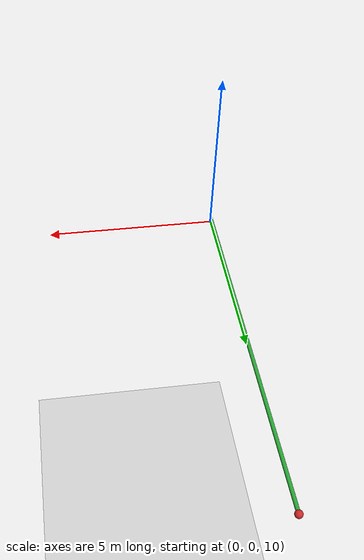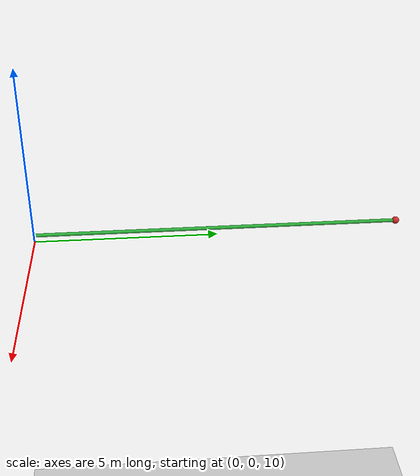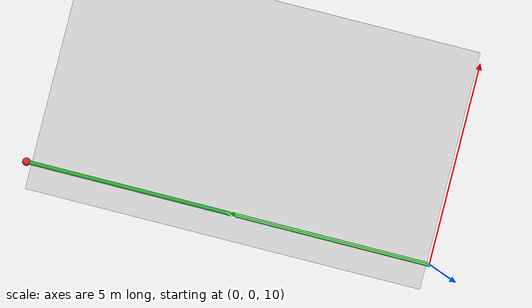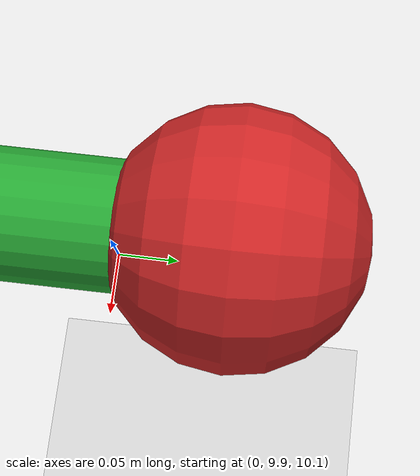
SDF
<?xml version="1.0" ?>
<sdf version="1.6">
  <world name="default">
    <include>
      <uri>model://sun</uri>
    </include>
    <include>
      <uri>model://ground_plane</uri>
    </include>

    <model name="model_pendulum">
      <pose>0.0 0.0 10.2 1.57079633 0.0 0.0</pose>
      <link name="link_pendulum_rod">
        <pose>0.0 0.0 0.0 0.0 0.0 0.0</pose>
        <inertial>
          <pose>0.0 0.0 -10.0 0.0 0.0 0.0</pose>
          <inertia>
            <ixx>1e-1</ixx>
            <ixy>0.0</ixy>
            <ixz>0.0</ixz>
            <iyy>1e-1</iyy>
            <iyz>0.0</iyz>
            <izz>1e-1</izz>
          </inertia>
          <mass>5.0</mass>
        </inertial>
        <velocity_decay>
          <linear>0.0</linear>
          <angular>0.0</angular>
        </velocity_decay>
        <visual name="visual_cylinder">
          <pose>0.0 0.0 -5.0 0.0 0.0 0.0</pose>
          <geometry>
            <cylinder>
              <radius>0.05</radius>
              <length>10.0</length>
            </cylinder>
          </geometry>
          <material>
            <script><uri>file://media/materials/scripts/gazebo.material</uri><name>Gazebo/Green</name></script>
          </material>
        </visual>
        <collision name="collision_cylinder">
          <pose>0.0 0.0 -5.0 0.0 0.0 0.0</pose>
          <max_contacts>250</max_contacts>
          <geometry>
            <cylinder>
              <radius>0.05</radius>
              <length>10.0</length>
            </cylinder>
          </geometry>
        </collision>
        <gravity>true</gravity>
        <self_collide>true</self_collide>
        <kinematic>false</kinematic>
      </link>
      <joint name="joint_0" type="revolute">
        <parent>world</parent>
        <child>link_pendulum_rod</child>
        <pose>0.0 0.0 0.0 0.0 0.0 0.0</pose>
        <axis>
          <xyz>1.0 0.0 0.0</xyz>
        </axis>
      </joint>
      <link name="link_pendulum_ball">
        <pose>0.0 0.0 -10.0 0.0 0.0 0.0</pose>
        <inertial>
          <pose>0.0 0.0 0.0 0.0 0.0 0.0</pose>
          <inertia>
            <ixx>1e-1</ixx>
            <ixy>0.0</ixy>
            <ixz>0.0</ixz>
            <iyy>1e-1</iyy>
            <iyz>0.0</iyz>
            <izz>1e-1</izz>
          </inertia>
          <mass>5.0</mass>
        </inertial>
        <velocity_decay>
          <linear>0.0</linear>
          <angular>0.0</angular>
        </velocity_decay>
        <visual name="visual_sphere">
          <pose>0.0 0.0 0.0 0.0 0.0 0.0</pose>
          <geometry>
            <sphere>
              <radius>0.1</radius>
            </sphere>
          </geometry>
          <material>
            <script><uri>file://media/materials/scripts/gazebo.material</uri><name>Gazebo/Red</name></script>
          </material>
        </visual>
        <collision name="collision_sphere">
          <pose>0.0 0.0 0.0 0.0 0.0 0.0</pose>
          <max_contacts>250</max_contacts>
          <geometry>
            <sphere>
              <radius>0.1</radius>
            </sphere>
          </geometry>
        </collision>
        <gravity>true</gravity>
        <self_collide>true</self_collide>
        <kinematic>false</kinematic>
        <sensor name="imu_sensor" type="imu">
          <always_on>1</always_on>
          <plugin name="imu_sensor_plugin" filename="libImuSensorPlugin.so">
            <custom>1</custom>
          </plugin>
          <!-- We choose a high fps on purpose. The goal is to check the effect
            of lockstep. -->
          <update_rate>1000</update_rate>
        </sensor>
      </link>
      <joint name="joint_1" type="revolute">
        <parent>link_pendulum_rod</parent>
        <child>link_pendulum_ball</child>
        <pose>0.0 0.0 0.0 0.0 0.0 0.0</pose>
        <axis>
          <limit>
            <lower>0</lower>
            <upper>0</upper>
            <effort>0</effort>
            <velocity>0</velocity>
          </limit>
          <xyz>0 0 1</xyz>
        </axis>
      </joint>
      <static>false</static>
    </model>
  </world>
</sdf>
